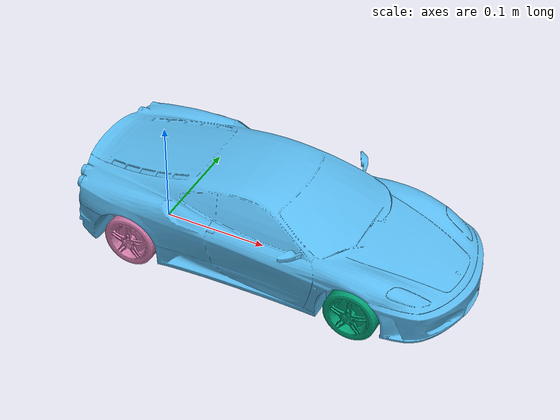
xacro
<?xml version="1.0"?>
<robot name="ferrari_vehicle"
    xmlns:xacro="http://www.ros.org/wiki/xacro">

    <!-- Materials -->
    <material name="black">
        <color rgba="0.0 0.0 0.0 1.0"/>
    </material>
    <material name="red">
        <color rgba="0.8 0.0 0.0 1.0"/>
    </material>

    <!-- Vehicle Dimensions (Forced to floats to prevent integer division zeroing) -->
    <xacro:property name="scale" value="${1.0/12.0}"/>
    <xacro:property name="length" value="${4.512*scale}"/>
    <xacro:property name="width" value="${2.04*scale}"/>
    <xacro:property name="height" value="${1.080*scale}"/>
    <xacro:property name="wheelbase" value="${2.600*scale+0.004}"/>
    <xacro:property name="wheel_diameter" value="${19.0*2.54/100.0*scale}"/>
    <xacro:property name="wheel_thickness" value="${0.285*scale}"/>
    <xacro:property name="floor_clearance" value="${0.110*scale}"/>

    <!-- Inertia Macros -->
    <xacro:macro name="box_inertia" params="x y z m">
        <inertia ixx="${m*(y*y+z*z)/12}" ixy="0" ixz="0" iyy="${m*(x*x+z*z)/12}" iyz="0" izz="${m*(x*x+y*y)/12}" />
    </xacro:macro>

    <xacro:macro name="cylinder_inertia" params="m r h">
        <inertia ixx="${m*(3*r*r+h*h)/12}" ixy="0" ixz="0" iyy="${m*r*r/2}" iyz="0" izz="${m*(3*r*r+h*h)/12}"/>
    </xacro:macro>

    <!-- Wheel Macro -->
    <xacro:macro name="wheel" params="name radius width mass">
        <link name="${name}">
            <collision>
                <origin xyz="0 ${-wheel_thickness/2} 0" rpy="${pi/2} 0 0" />
                <geometry>
                    <cylinder length="${width}" radius="${radius}"/>
                </geometry>
            </collision>
            <visual>
                <origin xyz="0 0 0" rpy="${pi/2} 0 ${pi/2}"/>
                <geometry>
                    <mesh filename="package://ferrari_description/meshes/F430_wheel.obj" scale="${scale} ${scale} ${scale}"/>
                </geometry>
            </visual>
            <inertial>
                <origin xyz="0 ${-wheel_thickness/2} 0" rpy="${pi/2} 0 0" />
                <mass value="${mass}"/>
                <xacro:cylinder_inertia m="${mass}" r="${radius}" h="${width}" />
            </inertial>
        </link>
    </xacro:macro>

    <!-- Front Steerable Wheel Macro -->
    <xacro:macro name="front_wheel" params="wheel_name reflect">
        <xacro:wheel name="${wheel_name}" radius="${wheel_diameter/2}" width="${wheel_thickness}" mass="6"/>

        <link name="${wheel_name}_assembly"/>

        <joint name="${wheel_name}_hinge" type="revolute">
            <parent link="chassis"/>
            <child link="${wheel_name}_assembly"/>
            <origin xyz="${wheelbase} ${reflect*(width/2 - wheel_thickness)} ${wheel_diameter/2}" rpy="0 0 ${(reflect-1)/2*pi}" />
            <axis xyz="0 0 1" />
            <limit lower="${-pi/2}" upper="${pi/2}" effort="100.0" velocity="5.0"/>
        </joint>

        <joint name="${wheel_name}_rotate" type="continuous">
            <parent link="${wheel_name}_assembly"/>
            <child link="${wheel_name}"/>
            <origin xyz="0 ${wheel_thickness/2} 0" rpy="0 0 0" />
            <axis xyz="0 ${reflect} 0" />
            <limit effort="100.0" velocity="50.0"/>
        </joint>
    </xacro:macro>

    <!-- Rear Fixed-Axle Wheel Macro -->
    <xacro:macro name="rear_wheel" params="wheel_name reflect">
        <xacro:wheel name="${wheel_name}" radius="${wheel_diameter/2}" width="${wheel_thickness}" mass="6" />

        <joint name="${wheel_name}_rotate" type="continuous">
            <parent link="chassis"/>
            <child link="${wheel_name}"/>
            <origin xyz="0 ${reflect*(width/2-wheel_thickness/2)} ${wheel_diameter/2}" rpy="0 0 ${(reflect-1)/2*pi}" />
            <axis xyz="0 ${reflect} 0" />
            <limit effort="100.0" velocity="50.0"/>
        </joint>
    </xacro:macro>

    <!-- Base link -->
    <link name="base_link" />

    <joint name="base_joint" type="fixed">
        <parent link="base_link"/>
        <child link="chassis"/>
    </joint>

    <!-- Chassis -->
    <link name="chassis">
        <collision>
            <origin xyz="${wheelbase/2 + 0.010} 0 ${height/2 + floor_clearance}" rpy="0 0 0"/>
            <geometry>
                <box size="${length} ${width} ${height}"/>
            </geometry>
        </collision>

        <visual>
            <origin xyz="${wheelbase/2 + 0.010} 0 0" rpy="${pi/2} 0 ${pi/2}"/>
            <geometry>
                <mesh filename="package://ferrari_description/meshes/F430_chassis.obj" scale="${scale} ${scale} ${scale}"/>
            </geometry>
        </visual>
        <inertial>
            <mass value="1.0"/>
            <origin xyz="${wheelbase/2 + 0.010} 0 ${height/2 + floor_clearance}" rpy="0 0 0"/>
            <xacro:box_inertia x="${length}" y="${width}" z="${height}" m="1.0" />
        </inertial>
    </link>

    <!-- Wheels -->
    <xacro:front_wheel wheel_name="front_wheel_right" reflect="-1" />
    <xacro:front_wheel wheel_name="front_wheel_left" reflect="1" />
    <xacro:rear_wheel wheel_name="rear_wheel_right" reflect="-1" />
    <xacro:rear_wheel wheel_name="rear_wheel_left" reflect="1" />

</robot>
